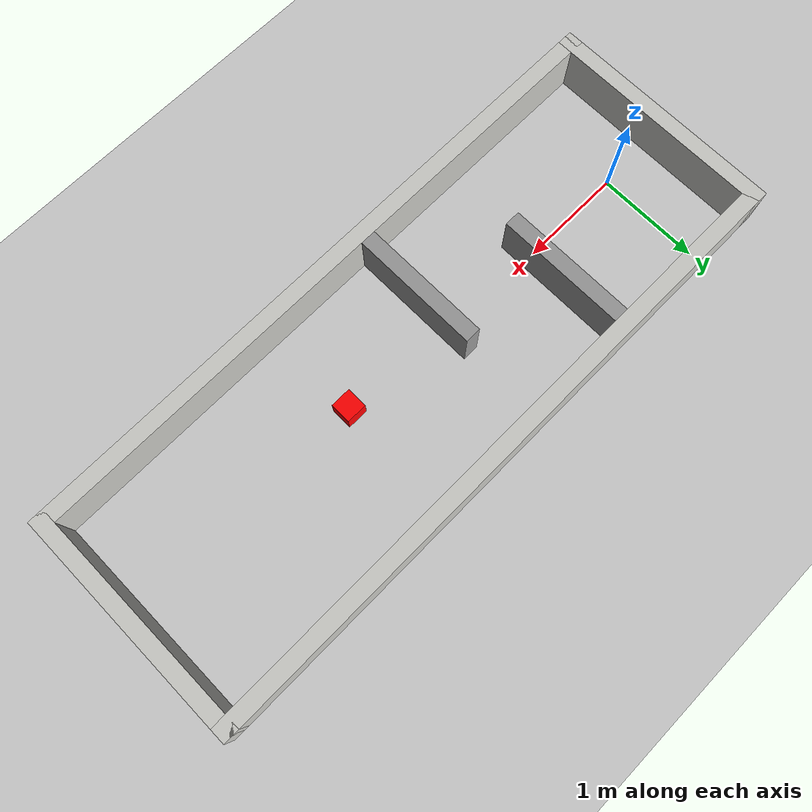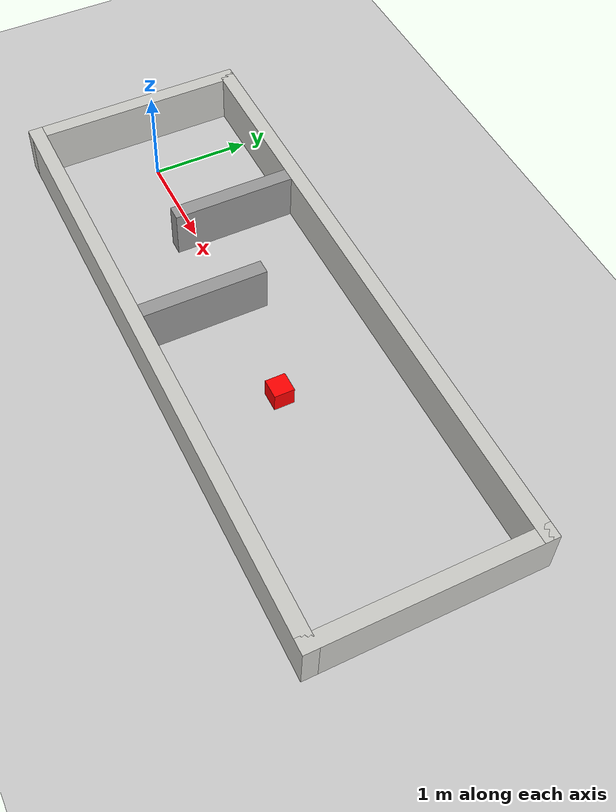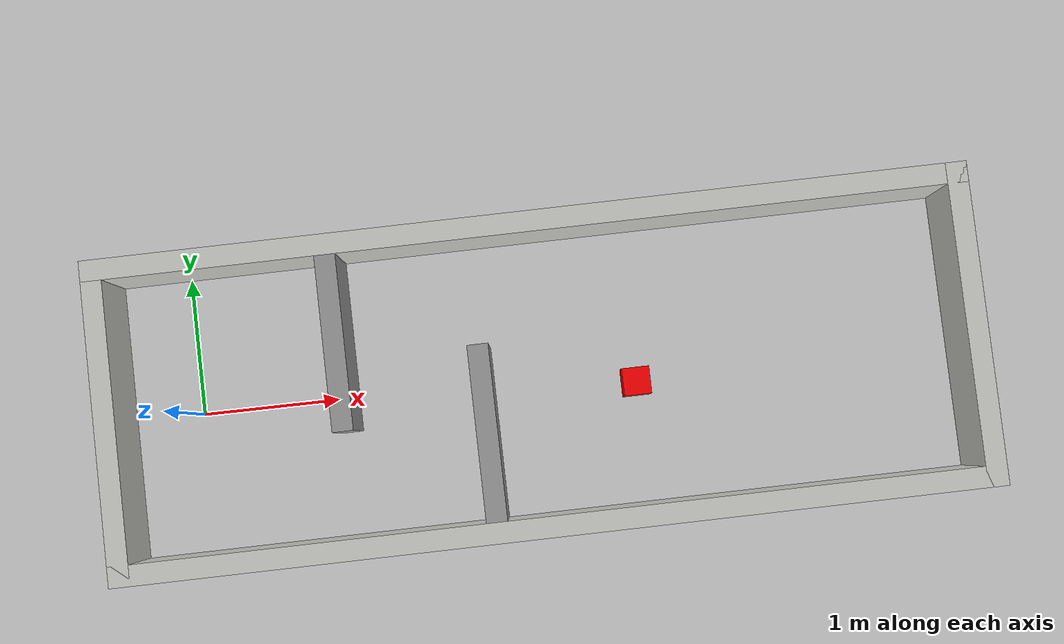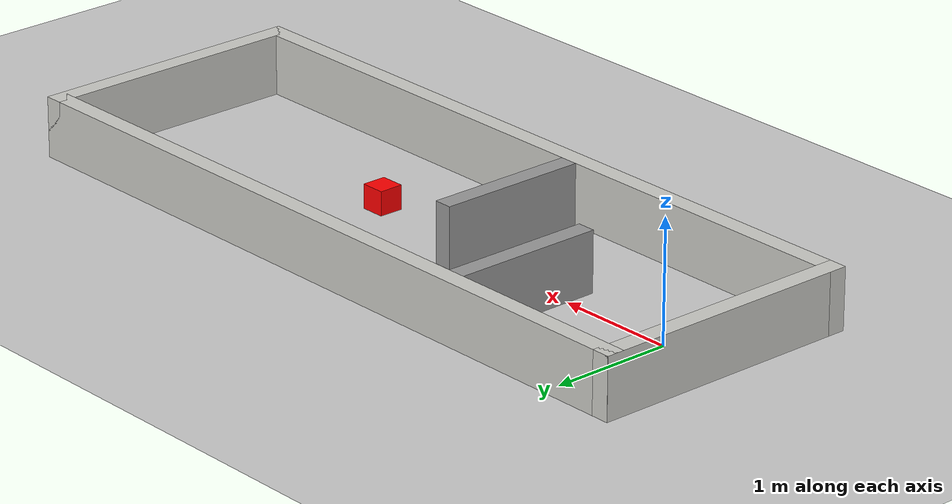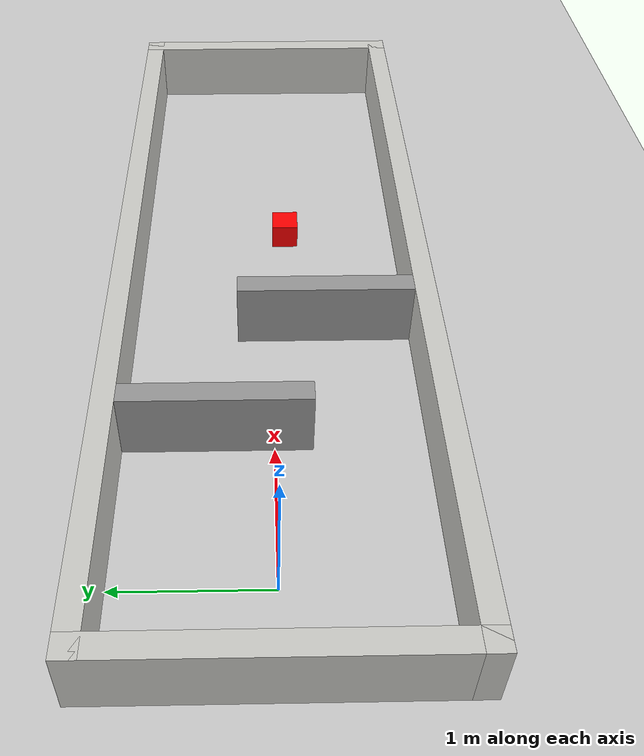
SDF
<sdf version="1.7">
 <world name="default">
  <light name="sun" type="directional">
   <pose>0 0 10 0 -0 0</pose>
   <diffuse>0.8 0.8 0.8 1</diffuse>
   <specular>0.2 0.2 0.2 1</specular>
   <attenuation>
    <range>1000</range>
    <constant>0.9</constant>
    <linear>0.01</linear>
    <quadratic>0.001</quadratic>
   </attenuation>
   <direction>-0.5 0.1 -0.9</direction>
   <spot><inner_angle>0</inner_angle><outer_angle>0</outer_angle><falloff>0</falloff></spot>
  </light>
  <model name="ground_plane">
   <static>1</static>
   <link name="link">
    <collision name="collision">
     <geometry><plane><normal>0 0 1</normal><size>100 100</size></plane></geometry>
     <surface><friction><ode><mu>100</mu><mu2>50</mu2></ode></friction></surface>
    </collision>
    <visual name="visual">
     <cast_shadows>0</cast_shadows>
     <geometry><plane><normal>0 0 1</normal><size>100 100</size></plane></geometry>
     <material>
      <script><uri>file://media/materials/scripts/gazebo.material</uri><name>Gazebo/Grey</name></script>
     </material>
    </visual>
   </link>
  </model>
  <gravity>0 0 -9.8</gravity>
  <magnetic_field>6e-06 2.3e-05 -4.2e-05</magnetic_field>
  <atmosphere type="adiabatic"/>
  <physics type="ode">
   <max_step_size>0.001</max_step_size>
   <real_time_factor>1</real_time_factor>
   <real_time_update_rate>1000</real_time_update_rate>
  </physics>
  <scene><ambient>0.4 0.4 0.4 1</ambient><background>0.7 0.7 0.7 1</background><shadows>1</shadows></scene>
  <spherical_coordinates>
   <surface_model>EARTH_WGS84</surface_model>
   <latitude_deg>0</latitude_deg>
   <longitude_deg>0</longitude_deg>
   <elevation>0</elevation>
   <heading_deg>0</heading_deg>
  </spherical_coordinates>
  <model name="walls">
   <pose>2.5 0 0 0 -0 0</pose>
   <link name="Wall_0">
    <collision name="Wall_0_Collision">
     <geometry><box><size>6.3 0.15 0.5</size></box></geometry>
     <pose>0 0 0.25 0 -0 0</pose>
    </collision>
    <visual name="Wall_0_Visual">
     <pose>0 0 0.25 0 -0 0</pose>
     <geometry><box><size>6.3 0.15 0.5</size></box></geometry>
     <material>
      <script><uri>file://media/materials/scripts/gazebo.material</uri><name>Gazebo/CeilingTiled</name></script>
      <ambient>0.760784 0.662745 0.627451 1</ambient>
     </material>
     <meta><layer>0</layer></meta>
    </visual>
    <pose>0 1.075 0 0 -0 0</pose>
   </link>
   <link name="Wall_1">
    <collision name="Wall_1_Collision">
     <geometry><box><size>2.3 0.15 0.5</size></box></geometry>
     <pose>0 0 0.25 0 -0 0</pose>
    </collision>
    <visual name="Wall_1_Visual">
     <pose>0 0 0.25 0 -0 0</pose>
     <geometry><box><size>2.3 0.15 0.5</size></box></geometry>
     <material>
      <script><uri>file://media/materials/scripts/gazebo.material</uri><name>Gazebo/CeilingTiled</name></script>
      <ambient>0.760784 0.662745 0.627451 1</ambient>
     </material>
     <meta><layer>0</layer></meta>
    </visual>
    <pose>3.075 0 0 0 -0 -1.5708</pose>
   </link>
   <link name="Wall_2">
    <collision name="Wall_2_Collision">
     <geometry><box><size>6.3 0.15 0.5</size></box></geometry>
     <pose>0 0 0.25 0 -0 0</pose>
    </collision>
    <visual name="Wall_2_Visual">
     <pose>0 0 0.25 0 -0 0</pose>
     <geometry><box><size>6.3 0.15 0.5</size></box></geometry>
     <material>
      <script><uri>file://media/materials/scripts/gazebo.material</uri><name>Gazebo/CeilingTiled</name></script>
      <ambient>0.760784 0.662745 0.627451 1</ambient>
     </material>
     <meta><layer>0</layer></meta>
    </visual>
    <pose>0 -1.075 0 0 -0 3.14159</pose>
   </link>
   <link name="Wall_3">
    <collision name="Wall_3_Collision">
     <geometry><box><size>2.3 0.15 0.5</size></box></geometry>
     <pose>0 0 0.25 0 -0 0</pose>
    </collision>
    <visual name="Wall_3_Visual">
     <pose>0 0 0.25 0 -0 0</pose>
     <geometry><box><size>2.3 0.15 0.5</size></box></geometry>
     <material>
      <script><uri>file://media/materials/scripts/gazebo.material</uri><name>Gazebo/CeilingTiled</name></script>
      <ambient>0.760784 0.662745 0.627451 1</ambient>
     </material>
     <meta><layer>0</layer></meta>
    </visual>
    <pose>-3.075 0 0 0 -0 1.5708</pose>
   </link>
   <static>1</static>
  </model>
  <model name="Obstacles">
   <link name="link_1">
    <inertial>
     <mass>1</mass>
     <inertia>
      <ixx>0.166667</ixx>
      <ixy>0</ixy>
      <ixz>0</ixz>
      <iyy>0.166667</iyy>
      <iyz>0</iyz>
      <izz>0.166667</izz>
     </inertia>
    </inertial>
    <pose>-1.14167 0.341667 0 0 -0 0</pose>
    <visual name="visual">
     <geometry><box><size>0.15 1.25 0.5</size></box></geometry>
     <material>
      <lighting>1</lighting>
      <script><uri>file://media/materials/scripts/gazebo.material</uri><name>Gazebo/Grey</name></script>
      <shader type="pixel"><normal_map>__default__</normal_map></shader>
      <ambient>0.3 0.3 0.3 1</ambient>
      <diffuse>0.7 0.7 0.7 1</diffuse>
      <specular>0.01 0.01 0.01 1</specular>
      <emissive>0 0 0 1</emissive>
     </material>
    </visual>
    <collision name="collision">
     <geometry><box><size>0.15 1.25 0.5</size></box></geometry>
     <surface>
      <friction>
       <ode><mu>1</mu><mu2>1</mu2><fdir1>0 0 0</fdir1><slip1>0</slip1><slip2>0</slip2></ode>
       <torsional>
        <coefficient>1</coefficient>
        <patch_radius>0</patch_radius>
        <surface_radius>0</surface_radius>
        <use_patch_radius>1</use_patch_radius>
        <ode><slip>0</slip></ode>
       </torsional>
      </friction>
      <bounce><restitution_coefficient>0</restitution_coefficient><threshold>1e+06</threshold></bounce>
      <contact>
       <collide_without_contact>0</collide_without_contact>
       <collide_without_contact_bitmask>1</collide_without_contact_bitmask>
       <collide_bitmask>1</collide_bitmask>
       <ode>
        <soft_cfm>0</soft_cfm>
        <soft_erp>0.2</soft_erp>
        <kp>1e+13</kp>
        <kd>1</kd>
        <max_vel>0.01</max_vel>
        <min_depth>0</min_depth>
       </ode>
       <bullet>
        <split_impulse>1</split_impulse>
        <split_impulse_penetration_threshold>-0.01</split_impulse_penetration_threshold>
        <soft_cfm>0</soft_cfm>
        <soft_erp>0.2</soft_erp>
        <kp>1e+13</kp>
        <kd>1</kd>
       </bullet>
      </contact>
     </surface>
    </collision>
   </link>
   <link name="link_1_clone">
    <inertial>
     <mass>1</mass>
     <inertia>
      <ixx>0.166667</ixx>
      <ixy>0</ixy>
      <ixz>0</ixz>
      <iyy>0.166667</iyy>
      <iyz>0</iyz>
      <izz>0.166667</izz>
     </inertia>
    </inertial>
    <pose>-0.141667 -0.408333 0 0 -0 0</pose>
    <visual name="visual">
     <geometry><box><size>0.15 1.25 0.5</size></box></geometry>
     <material>
      <lighting>1</lighting>
      <script><uri>file://media/materials/scripts/gazebo.material</uri><name>Gazebo/Grey</name></script>
      <shader type="pixel"><normal_map>__default__</normal_map></shader>
      <ambient>0.3 0.3 0.3 1</ambient>
      <diffuse>0.7 0.7 0.7 1</diffuse>
      <specular>0.01 0.01 0.01 1</specular>
      <emissive>0 0 0 1</emissive>
     </material>
    </visual>
    <collision name="collision">
     <geometry><box><size>0.15 1.25 0.5</size></box></geometry>
     <surface>
      <friction>
       <ode><mu>1</mu><mu2>1</mu2><fdir1>0 0 0</fdir1><slip1>0</slip1><slip2>0</slip2></ode>
       <torsional>
        <coefficient>1</coefficient>
        <patch_radius>0</patch_radius>
        <surface_radius>0</surface_radius>
        <use_patch_radius>1</use_patch_radius>
        <ode><slip>0</slip></ode>
       </torsional>
      </friction>
      <bounce><restitution_coefficient>0</restitution_coefficient><threshold>1e+06</threshold></bounce>
      <contact>
       <collide_without_contact>0</collide_without_contact>
       <collide_without_contact_bitmask>1</collide_without_contact_bitmask>
       <collide_bitmask>1</collide_bitmask>
       <ode>
        <soft_cfm>0</soft_cfm>
        <soft_erp>0.2</soft_erp>
        <kp>1e+13</kp>
        <kd>1</kd>
        <max_vel>0.01</max_vel>
        <min_depth>0</min_depth>
       </ode>
       <bullet>
        <split_impulse>1</split_impulse>
        <split_impulse_penetration_threshold>-0.01</split_impulse_penetration_threshold>
        <soft_cfm>0</soft_cfm>
        <soft_erp>0.2</soft_erp>
        <kp>1e+13</kp>
        <kd>1</kd>
       </bullet>
      </contact>
     </surface>
    </collision>
   </link>
   <static>0</static>
   <pose>2.21667 0.033333 0.25 0 -0 0</pose>
  </model>
  <include><uri>model://unit_box</uri><pose>3.18 -0.12 0.1 0 0 -0.0009</pose></include>
 </world>
</sdf>

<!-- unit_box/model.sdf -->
<sdf version='1.7'>
  <model name='unit_box'>
    <link name='link'>
      <inertial>
        <mass>1</mass>
        <inertia>
          <ixx>0.166667</ixx>
          <ixy>0</ixy>
          <ixz>0</ixz>
          <iyy>0.166667</iyy>
          <iyz>0</iyz>
          <izz>0.166667</izz>
        </inertia>
        <pose>0 0 0 0 -0 0</pose>
      </inertial>
      <self_collide>0</self_collide>
      <enable_wind>0</enable_wind>
      <kinematic>0</kinematic>
      <pose>0 0 0 0 -0 0</pose>
      <gravity>1</gravity>
      <visual name='visual'>
        <geometry>
          <box>
            <size>0.2 0.2 0.2</size>
          </box>
        </geometry>
        <material>
          <script>
            <name>Gazebo/Grey</name>
            <uri>file://media/materials/scripts/gazebo.material</uri>
          </script>
          <shader type='pixel'>
            <normal_map>__default__</normal_map>
          </shader>
          <ambient>1 0 0 0</ambient>
          <diffuse>0.7 0.7 0.7 1</diffuse>
          <specular>0.01 0.01 0.01 1</specular>
          <emissive>0 0 0 1</emissive>
        </material>
        <pose>0 0 0 0 -0 0</pose>
        <transparency>0</transparency>
        <cast_shadows>1</cast_shadows>
      </visual>
      <collision name='collision'>
        <laser_retro>0</laser_retro>
        <max_contacts>10</max_contacts>
        <pose>0 0 0 0 -0 0</pose>
        <geometry>
          <box>
            <size>0.2 0.2 0.2</size>
          </box>
        </geometry>
        <surface>
          <friction>
            <ode>
              <mu>1</mu>
              <mu2>1</mu2>
              <fdir1>0 0 0</fdir1>
              <slip1>0</slip1>
              <slip2>0</slip2>
            </ode>
            <torsional>
              <coefficient>1</coefficient>
              <patch_radius>0</patch_radius>
              <surface_radius>0</surface_radius>
              <use_patch_radius>1</use_patch_radius>
              <ode>
                <slip>0</slip>
              </ode>
            </torsional>
          </friction>
          <bounce>
            <restitution_coefficient>0</restitution_coefficient>
            <threshold>1e+06</threshold>
          </bounce>
          <contact>
            <collide_without_contact>0</collide_without_contact>
            <collide_without_contact_bitmask>1</collide_without_contact_bitmask>
            <collide_bitmask>1</collide_bitmask>
            <ode>
              <soft_cfm>0</soft_cfm>
              <soft_erp>0.2</soft_erp>
              <kp>1e+13</kp>
              <kd>1</kd>
              <max_vel>0.01</max_vel>
              <min_depth>0</min_depth>
            </ode>
            <bullet>
              <split_impulse>1</split_impulse>
              <split_impulse_penetration_threshold>-0.01</split_impulse_penetration_threshold>
              <soft_cfm>0</soft_cfm>
              <soft_erp>0.2</soft_erp>
              <kp>1e+13</kp>
              <kd>1</kd>
            </bullet>
          </contact>
        </surface>
      </collision>
    </link>
    <static>0</static>
    <allow_auto_disable>1</allow_auto_disable>
  </model>
</sdf>
